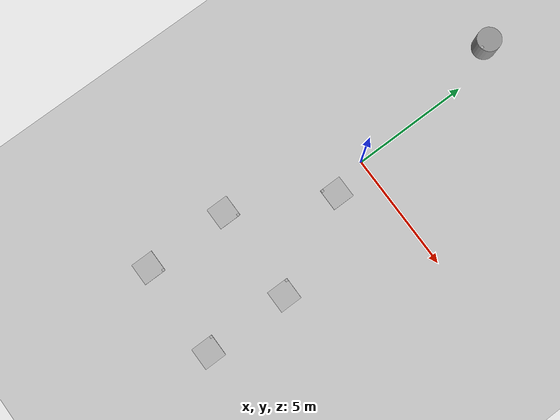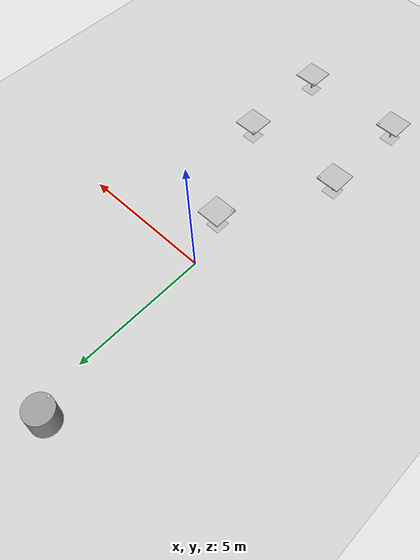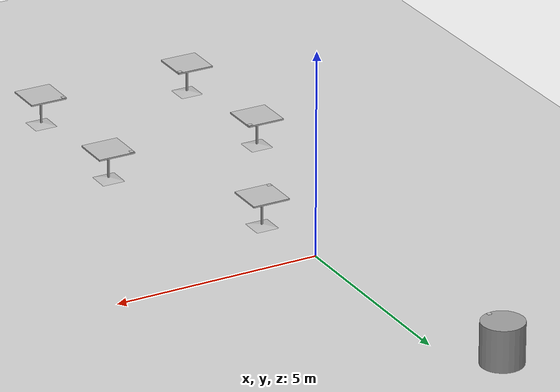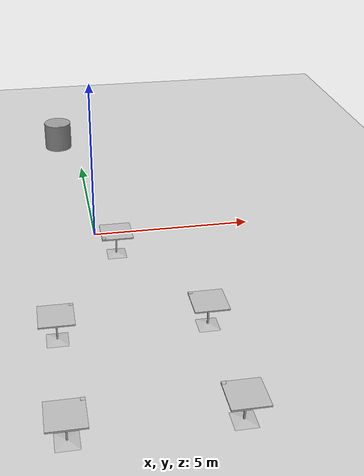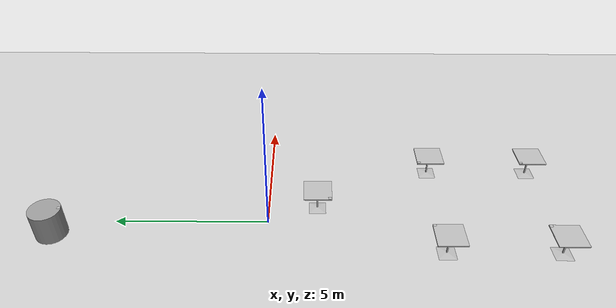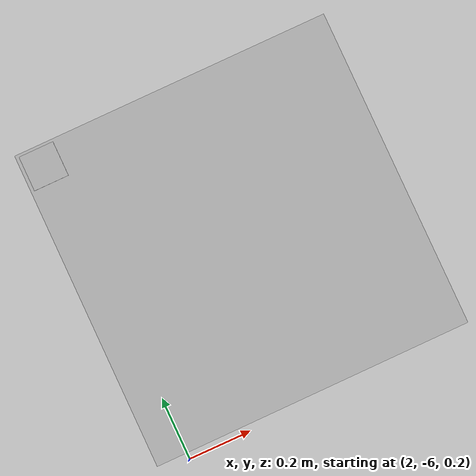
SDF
<sdf version="1.7">
 <world name="default">
  <light name="sun" type="directional">
   <pose>0 0 10 0 -0 0</pose>
   <diffuse>0.8 0.8 0.8 1</diffuse>
   <specular>0.2 0.2 0.2 1</specular>
   <attenuation>
    <range>1000</range>
    <constant>0.9</constant>
    <linear>0.01</linear>
    <quadratic>0.001</quadratic>
   </attenuation>
   <direction>0 0.5 -0.9</direction>
   <spot><inner_angle>0</inner_angle><outer_angle>0</outer_angle><falloff>0</falloff></spot>
  </light>
  <light name="point_light" type="point">
   <pose>0 -0.377195 6.59868 0 -0 0</pose>
   <diffuse>0.784314 0.784314 0.784314 1</diffuse>
   <specular>0.0980392 0.0980392 0.0980392 1</specular>
   <attenuation>
    <range>50</range>
    <constant>0.8</constant>
    <linear>0</linear>
    <quadratic>0.001</quadratic>
   </attenuation>
   <cast_shadows>0</cast_shadows>
   <direction>0 0 -1</direction>
   <spot><inner_angle>0</inner_angle><outer_angle>0</outer_angle><falloff>0</falloff></spot>
  </light>
  <model name="ground_plane">
   <static>1</static>
   <link name="link">
    <collision name="collision">
     <geometry><plane><normal>0 0 1</normal><size>100 100</size></plane></geometry>
     <surface>
      <contact><collide_bitmask>65535</collide_bitmask></contact>
      <friction><ode><mu>100</mu><mu2>50</mu2></ode></friction>
     </surface>
    </collision>
    <visual name="visual">
     <cast_shadows>0</cast_shadows>
     <geometry><plane><normal>0 0 1</normal><size>100 100</size></plane></geometry>
     <material>
      <script><uri>file://media/materials/scripts/gazebo.material</uri><name>Gazebo/Grey</name></script>
     </material>
    </visual>
   </link>
  </model>
  <model name="table1">
   <static>1</static>
   <link name="link">
    <collision name="surface">
     <pose>0 0 0.755 0 -0 0</pose>
     <geometry><box><size>0.913 0.913 0.04</size></box></geometry>
    </collision>
    <collision name="column">
     <pose>0 0 0.37 0 -0 0</pose>
     <geometry><box><size>0.042 0.042 0.74</size></box></geometry>
    </collision>
    <collision name="base">
     <pose>0 0 0.02 0 -0 0</pose>
     <geometry><box><size>0.56 0.56 0.04</size></box></geometry>
    </collision>
    <visual name="visual">
     <geometry><mesh><uri>model://cafe_table/meshes/cafe_table.dae</uri></mesh></geometry>
    </visual>
   </link>
   <pose>0.5 -1.6 0.2 0 -0 0</pose>
  </model>
  <model name="table2">
   <static>1</static>
   <link name="link">
    <collision name="surface">
     <pose>0 0 0.755 0 -0 0</pose>
     <geometry><box><size>0.913 0.913 0.04</size></box></geometry>
    </collision>
    <collision name="column">
     <pose>0 0 0.37 0 -0 0</pose>
     <geometry><box><size>0.042 0.042 0.74</size></box></geometry>
    </collision>
    <collision name="base">
     <pose>0 0 0.02 0 -0 0</pose>
     <geometry><box><size>0.56 0.56 0.04</size></box></geometry>
    </collision>
    <visual name="visual">
     <geometry><mesh><uri>model://cafe_table/meshes/cafe_table.dae</uri></mesh></geometry>
    </visual>
   </link>
   <pose>2.4 -5.5 0.2 0 -0 0</pose>
  </model>
  <model name="table3">
   <static>1</static>
   <link name="link">
    <collision name="surface">
     <pose>0 0 0.755 0 -0 0</pose>
     <geometry><box><size>0.913 0.913 0.04</size></box></geometry>
    </collision>
    <collision name="column">
     <pose>0 0 0.37 0 -0 0</pose>
     <geometry><box><size>0.042 0.042 0.74</size></box></geometry>
    </collision>
    <collision name="base">
     <pose>0 0 0.02 0 -0 0</pose>
     <geometry><box><size>0.56 0.56 0.04</size></box></geometry>
    </collision>
    <visual name="visual">
     <geometry><mesh><uri>model://cafe_table/meshes/cafe_table.dae</uri></mesh></geometry>
    </visual>
   </link>
   <pose>-1.5 -5.5 0.2 0 -0 0</pose>
  </model>
  <model name="table4">
   <static>1</static>
   <link name="link">
    <collision name="surface">
     <pose>0 0 0.755 0 -0 0</pose>
     <geometry><box><size>0.913 0.913 0.04</size></box></geometry>
    </collision>
    <collision name="column">
     <pose>0 0 0.37 0 -0 0</pose>
     <geometry><box><size>0.042 0.042 0.74</size></box></geometry>
    </collision>
    <collision name="base">
     <pose>0 0 0.02 0 -0 0</pose>
     <geometry><box><size>0.56 0.56 0.04</size></box></geometry>
    </collision>
    <visual name="visual">
     <geometry><mesh><uri>model://cafe_table/meshes/cafe_table.dae</uri></mesh></geometry>
    </visual>
   </link>
   <pose>2.4 -9 0.2 0 -0 0</pose>
  </model>
  <model name="table5">
   <static>1</static>
   <link name="link">
    <collision name="surface">
     <pose>0 0 0.755 0 -0 0</pose>
     <geometry><box><size>0.913 0.913 0.04</size></box></geometry>
    </collision>
    <collision name="column">
     <pose>0 0 0.37 0 -0 0</pose>
     <geometry><box><size>0.042 0.042 0.74</size></box></geometry>
    </collision>
    <collision name="base">
     <pose>0 0 0.02 0 -0 0</pose>
     <geometry><box><size>0.56 0.56 0.04</size></box></geometry>
    </collision>
    <visual name="visual">
     <geometry><mesh><uri>model://cafe_table/meshes/cafe_table.dae</uri></mesh></geometry>
    </visual>
   </link>
   <pose>-1.5 -9 0.2 0 -0 0</pose>
  </model>
  <model name="Marker0">
   <frame name="Marker0::__model__" attached_to="Marker0::link">
    <pose relative_to="__model__">0 0 0 0 -0 0</pose>
   </frame>
   <static>1</static>
   <link name="Marker0::link">
    <visual name="visual">
     <geometry><mesh><uri>model://marker0/meshes/Marker0.dae</uri><scale>0.2 0.2 0.2</scale></mesh></geometry>
    </visual>
    <pose relative_to="Marker0::__model__">0 0 0 0 -0 0</pose>
   </link>
   <pose>-0.611757 6.34978 1.19502 -3.14159 -1.57 -3.14159</pose>
  </model>
  <model name="Marker1">
   <frame name="Marker1::__model__" attached_to="Marker1::link">
    <pose relative_to="__model__">0 0 0 0 -0 0</pose>
   </frame>
   <static>1</static>
   <link name="Marker1::link">
    <visual name="visual">
     <geometry><mesh><uri>model://marker1/meshes/Marker1.dae</uri><scale>0.2 0.2 0.2</scale></mesh></geometry>
    </visual>
    <pose relative_to="Marker1::__model__">0 0 0 0 -0 0</pose>
   </link>
   <pose>-1.04784 -8.59472 0.983451 -3.14159 -1.57 -3.14159</pose>
  </model>
  <model name="Marker2">
   <frame name="Marker2::__model__" attached_to="Marker2::link">
    <pose relative_to="__model__">0 0 0 0 -0 0</pose>
   </frame>
   <static>1</static>
   <link name="Marker2::link">
    <visual name="visual">
     <geometry><mesh><uri>model://marker2/meshes/Marker2.dae</uri><scale>0.2 0.2 0.2</scale></mesh></geometry>
    </visual>
    <pose relative_to="Marker2::__model__">0 0 0 0 -0 0</pose>
   </link>
   <pose>2.05288 -5.1015 0.98364 -3.14159 -1.57 -3.14159</pose>
  </model>
  <model name="Marker3">
   <frame name="Marker3::__model__" attached_to="Marker3::link">
    <pose relative_to="__model__">0 0 0 0 -0 0</pose>
   </frame>
   <static>1</static>
   <link name="Marker3::link">
    <visual name="visual">
     <geometry><mesh><uri>model://marker3/meshes/Marker3.dae</uri><scale>0.2 0.2 0.2</scale></mesh></geometry>
    </visual>
    <pose relative_to="Marker3::__model__">0 0 0 0 -0 0</pose>
   </link>
   <pose>0.158154 -1.98484 0.982131 -3.14159 -1.57 -3.14159</pose>
  </model>
  <model name="Marker4">
   <frame name="Marker4::__model__" attached_to="Marker4::link">
    <pose relative_to="__model__">0 0 0 0 -0 0</pose>
   </frame>
   <static>1</static>
   <link name="Marker4::link">
    <visual name="visual">
     <geometry><mesh><uri>model://marker4/meshes/Marker4.dae</uri><scale>0.2 0.2 0.2</scale></mesh></geometry>
    </visual>
    <pose relative_to="Marker4::__model__">0 0 0 0 -0 0</pose>
   </link>
   <pose>-1.04784 -5.1015 0.983451 -3.14159 -1.57 -3.14159</pose>
  </model>
  <model name="Marker5">
   <frame name="Marker5::__model__" attached_to="Marker5::link">
    <pose relative_to="__model__">0 0 0 0 -0 0</pose>
   </frame>
   <static>1</static>
   <link name="Marker5::link">
    <visual name="visual">
     <geometry><mesh><uri>model://marker5/meshes/Marker5.dae</uri><scale>0.2 0.2 0.2</scale></mesh></geometry>
    </visual>
    <pose relative_to="Marker5::__model__">0 0 0 0 -0 0</pose>
   </link>
   <pose>2.05288 -8.59472 0.98364 -3.14159 -1.57 -3.14159</pose>
  </model>
  <gravity>0 0 -9.8</gravity>
  <magnetic_field>6e-06 2.3e-05 -4.2e-05</magnetic_field>
  <atmosphere type="adiabatic"/>
  <physics type="ode">
   <max_step_size>0.001</max_step_size>
   <real_time_factor>1</real_time_factor>
   <real_time_update_rate>1000</real_time_update_rate>
  </physics>
  <scene><ambient>0.4 0.4 0.4 1</ambient><background>0.7 0.7 0.7 1</background><shadows>1</shadows></scene>
  <audio><device>default</device></audio>
  <spherical_coordinates>
   <surface_model>EARTH_WGS84</surface_model>
   <latitude_deg>0</latitude_deg>
   <longitude_deg>0</longitude_deg>
   <elevation>0</elevation>
   <heading_deg>0</heading_deg>
  </spherical_coordinates>
  <model name="unit_cylinder">
   <pose>-0.743111 6.77876 0.68979 0 0 -3e-05</pose>
   <link name="link">
    <inertial>
     <mass>1</mass>
     <inertia><ixx>0.145833</ixx><ixy>0</ixy><ixz>0</ixz><iyy>0.145833</iyy><iyz>0</iyz><izz>0.125</izz></inertia>
    </inertial>
    <collision name="collision">
     <geometry><cylinder><radius>0.5</radius><length>1</length></cylinder></geometry>
    </collision>
    <visual name="visual">
     <geometry><cylinder><radius>0.5</radius><length>1</length></cylinder></geometry>
     <material>
      <script><name>Gazebo/Grey</name><uri>file://media/materials/scripts/gazebo.material</uri></script>
     </material>
    </visual>
   </link>
  </model>
 </world>
</sdf>
